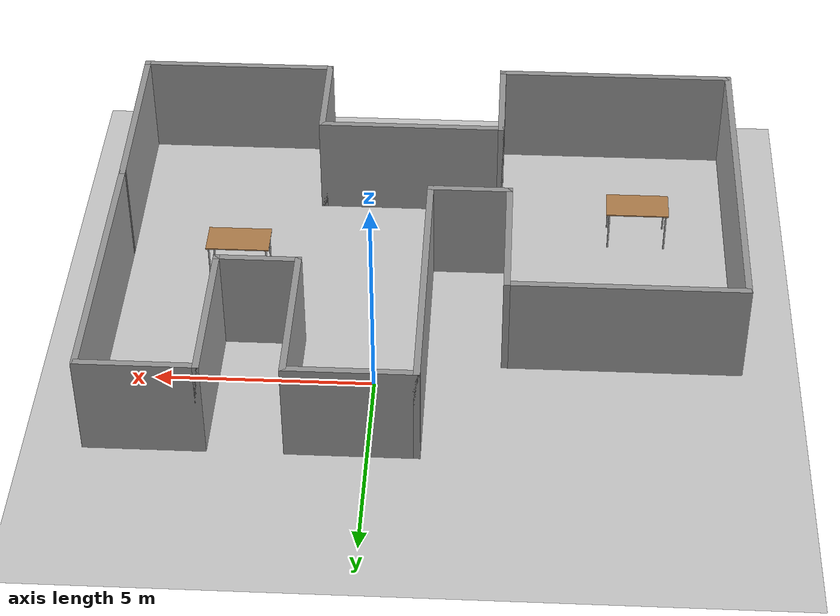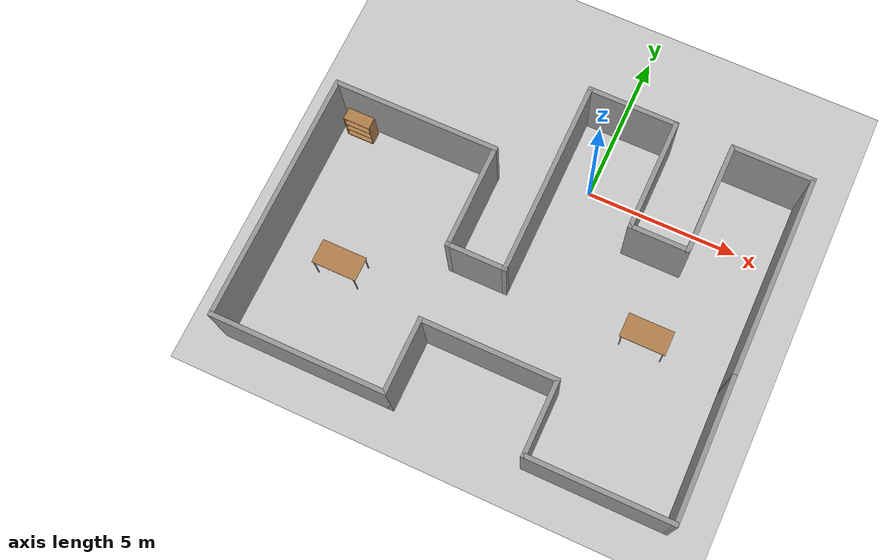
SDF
<sdf version="1.6">
 <world name="default">
  <light name="sun" type="directional">
   <pose>0 0 10 0 -0 0</pose>
   <diffuse>0.8 0.8 0.8 1</diffuse>
   <specular>0.2 0.2 0.2 1</specular>
   <attenuation>
    <range>1000</range>
    <constant>0.9</constant>
    <linear>0.01</linear>
    <quadratic>0.001</quadratic>
   </attenuation>
   <direction>-0.5 0.1 -0.9</direction>
  </light>
  <model name="ground_plane">
   <static>1</static>
   <link name="link">
    <collision name="collision">
     <geometry><plane><normal>0 0 1</normal><size>100 100</size></plane></geometry>
     <surface>
      <contact><collide_bitmask>65535</collide_bitmask></contact>
      <friction><ode><mu>100</mu><mu2>50</mu2></ode></friction>
     </surface>
    </collision>
    <visual name="visual">
     <cast_shadows>0</cast_shadows>
     <geometry><plane><normal>0 0 1</normal><size>100 100</size></plane></geometry>
     <material>
      <script><uri>file://media/materials/scripts/gazebo.material</uri><name>Gazebo/Grey</name></script>
     </material>
    </visual>
   </link>
  </model>
  <gravity>0 0 -9.8</gravity>
  <magnetic_field>6e-06 2.3e-05 -4.2e-05</magnetic_field>
  <atmosphere type="adiabatic"/>
  <physics name="default_physics" default="0" type="ode">
   <max_step_size>0.001</max_step_size>
   <real_time_factor>1</real_time_factor>
   <real_time_update_rate>1000</real_time_update_rate>
  </physics>
  <scene><ambient>0.4 0.4 0.4 1</ambient><background>0.7 0.7 0.7 1</background><shadows>1</shadows></scene>
  <spherical_coordinates>
   <surface_model>EARTH_WGS84</surface_model>
   <latitude_deg>0</latitude_deg>
   <longitude_deg>0</longitude_deg>
   <elevation>0</elevation>
   <heading_deg>0</heading_deg>
  </spherical_coordinates>
  <model name="home">
   <pose>-1.02459 -3.31041 0 0 -0 0</pose>
   <link name="Wall_22">
    <collision name="Wall_22_Collision">
     <geometry><box><size>6.5 0.15 2.5</size></box></geometry>
     <pose>0 0 1.25 0 -0 0</pose>
    </collision>
    <visual name="Wall_22_Visual">
     <pose>0 0 1.25 0 -0 0</pose>
     <geometry><box><size>6.5 0.15 2.5</size></box></geometry>
     <material>
      <script><uri>file://media/materials/scripts/gazebo.material</uri><name>Gazebo/Grey</name></script>
      <ambient>1 1 1 1</ambient>
     </material>
     <meta><layer>0</layer></meta>
    </visual>
    <pose>-0.075414 2.37541 0 0 0 -1.5708</pose>
   </link>
   <link name="Wall_23">
    <collision name="Wall_23_Collision">
     <geometry><box><size>2 0.15 2.5</size></box></geometry>
     <pose>0 0 1.25 0 -0 0</pose>
    </collision>
    <visual name="Wall_23_Visual">
     <pose>0 0 1.25 0 -0 0</pose>
     <geometry><box><size>2 0.15 2.5</size></box></geometry>
     <material>
      <script><uri>file://media/materials/scripts/gazebo.material</uri><name>Gazebo/Grey</name></script>
      <ambient>1 1 1 1</ambient>
     </material>
     <meta><layer>0</layer></meta>
    </visual>
    <pose>-1.00041 -0.799586 0 0 -0 3.14159</pose>
   </link>
   <link name="Wall_24">
    <collision name="Wall_24_Collision">
     <geometry><box><size>3.5 0.15 2.5</size></box></geometry>
     <pose>0 0 1.25 0 -0 0</pose>
    </collision>
    <visual name="Wall_24_Visual">
     <pose>0 0 1.25 0 -0 0</pose>
     <geometry><box><size>3.5 0.15 2.5</size></box></geometry>
     <material>
      <script><uri>file://media/materials/scripts/gazebo.material</uri><name>Gazebo/Grey</name></script>
      <ambient>1 1 1 1</ambient>
     </material>
     <meta><layer>0</layer></meta>
    </visual>
    <pose>-1.92541 0.875414 0 0 -0 1.5708</pose>
   </link>
   <link name="Wall_28">
    <collision name="Wall_28_Collision">
     <geometry><box><size>5.5 0.15 2.5</size></box></geometry>
     <pose>0 0 1.25 0 -0 0</pose>
    </collision>
    <visual name="Wall_28_Visual">
     <pose>0 0 1.25 0 -0 0</pose>
     <geometry><box><size>5.5 0.15 2.5</size></box></geometry>
     <material>
      <script><uri>file://media/materials/scripts/gazebo.material</uri><name>Gazebo/Grey</name></script>
      <ambient>1 1 1 1</ambient>
     </material>
     <meta><layer>0</layer></meta>
    </visual>
    <pose>-4.60041 2.55041 0 0 -0 3.14159</pose>
   </link>
   <link name="Wall_29">
    <collision name="Wall_29_Collision">
     <geometry><box><size>8.25 0.15 2.5</size></box></geometry>
     <pose>0 0 1.25 0 -0 0</pose>
    </collision>
    <visual name="Wall_29_Visual">
     <pose>0 0 1.25 0 -0 0</pose>
     <geometry><box><size>8.25 0.15 2.5</size></box></geometry>
     <material>
      <script><uri>file://media/materials/scripts/gazebo.material</uri><name>Gazebo/Grey</name></script>
      <ambient>1 1 1 1</ambient>
     </material>
     <meta><layer>0</layer></meta>
    </visual>
    <pose>-7.27541 -1.49959 0 0 0 -1.5708</pose>
   </link>
   <link name="Wall_3">
    <collision name="Wall_3_Collision">
     <geometry><box><size>3 0.15 2.5</size></box></geometry>
     <pose>0 0 1.25 0 -0 0</pose>
    </collision>
    <visual name="Wall_3_Visual">
     <pose>0 0 1.25 0 -0 0</pose>
     <geometry><box><size>3 0.15 2.5</size></box></geometry>
     <material>
      <script><uri>file://media/materials/scripts/gazebo.material</uri><name>Gazebo/Grey</name></script>
      <ambient>1 1 1 1</ambient>
     </material>
     <meta><layer>0</layer></meta>
    </visual>
    <pose>1.34959 5.55041 0 0 -0 0</pose>
   </link>
   <link name="Wall_32">
    <collision name="Wall_32_Collision">
     <geometry><box><size>5.75 0.15 2.5</size></box></geometry>
     <pose>0 0 1.25 0 -0 0</pose>
    </collision>
    <visual name="Wall_32_Visual">
     <pose>0 0 1.25 0 -0 0</pose>
     <geometry><box><size>5.75 0.15 2.5</size></box></geometry>
     <material>
      <script><uri>file://media/materials/scripts/gazebo.material</uri><name>Gazebo/Grey</name></script>
      <ambient>1 1 1 1</ambient>
     </material>
     <meta><layer>0</layer></meta>
    </visual>
    <pose>-4.47541 -5.54959 0 0 -0 0</pose>
   </link>
   <link name="Wall_33">
    <collision name="Wall_33_Collision">
     <geometry><box><size>2.5 0.15 2.5</size></box></geometry>
     <pose>0 0 1.25 0 -0 0</pose>
    </collision>
    <visual name="Wall_33_Visual">
     <pose>0 0 1.25 0 -0 0</pose>
     <geometry><box><size>2.5 0.15 2.5</size></box></geometry>
     <material>
      <script><uri>file://media/materials/scripts/gazebo.material</uri><name>Gazebo/Grey</name></script>
      <ambient>1 1 1 1</ambient>
     </material>
     <meta><layer>0</layer></meta>
    </visual>
    <pose>-1.67541 -4.37459 0 0 -0 1.5708</pose>
   </link>
   <link name="Wall_34">
    <collision name="Wall_34_Collision">
     <geometry><box><size>4.5 0.15 2.5</size></box></geometry>
     <pose>0 0 1.25 0 -0 0</pose>
    </collision>
    <visual name="Wall_34_Visual">
     <pose>0 0 1.25 0 -0 0</pose>
     <geometry><box><size>4.5 0.15 2.5</size></box></geometry>
     <material>
      <script><uri>file://media/materials/scripts/gazebo.material</uri><name>Gazebo/Grey</name></script>
      <ambient>1 1 1 1</ambient>
     </material>
     <meta><layer>0</layer></meta>
    </visual>
    <pose>0.499586 -3.19959 0 0 -0 0</pose>
   </link>
   <link name="Wall_35">
    <collision name="Wall_35_Collision">
     <geometry><box><size>2.5 0.15 2.5</size></box></geometry>
     <pose>0 0 1.25 0 -0 0</pose>
    </collision>
    <visual name="Wall_35_Visual">
     <pose>0 0 1.25 0 -0 0</pose>
     <geometry><box><size>2.5 0.15 2.5</size></box></geometry>
     <material>
      <script><uri>file://media/materials/scripts/gazebo.material</uri><name>Gazebo/Grey</name></script>
      <ambient>1 1 1 1</ambient>
     </material>
     <meta><layer>0</layer></meta>
    </visual>
    <pose>2.67459 -4.37459 0 0 0 -1.5708</pose>
   </link>
   <link name="Wall_36">
    <collision name="Wall_36_Collision">
     <geometry><box><size>4.75 0.15 2.5</size></box></geometry>
     <pose>0 0 1.25 0 -0 0</pose>
    </collision>
    <visual name="Wall_36_Visual">
     <pose>0 0 1.25 0 -0 0</pose>
     <geometry><box><size>4.75 0.15 2.5</size></box></geometry>
     <material>
      <script><uri>file://media/materials/scripts/gazebo.material</uri><name>Gazebo/Grey</name></script>
      <ambient>1 1 1 1</ambient>
     </material>
     <meta><layer>0</layer></meta>
    </visual>
    <pose>4.97459 -5.54959 0 0 -0 0</pose>
   </link>
   <link name="Wall_37">
    <collision name="Wall_37_Collision">
     <geometry><box><size>4.65028 0.15 2.5</size></box></geometry>
     <pose>0 0 1.25 0 -0 0</pose>
    </collision>
    <visual name="Wall_37_Visual">
     <pose>0 0 1.25 0 -0 0</pose>
     <geometry><box><size>4.65028 0.15 2.5</size></box></geometry>
     <material>
      <script><uri>file://media/materials/scripts/gazebo.material</uri><name>Gazebo/Grey</name></script>
      <ambient>1 1 1 1</ambient>
     </material>
     <meta><layer>0</layer></meta>
    </visual>
    <pose>7.24959 -3.29959 0 0 -0 1.58191</pose>
   </link>
   <link name="Wall_4">
    <collision name="Wall_4_Collision">
     <geometry><box><size>3.75 0.15 2.5</size></box></geometry>
     <pose>0 0 1.25 0 -0 0</pose>
    </collision>
    <visual name="Wall_4_Visual">
     <pose>0 0 1.25 0 -0 0</pose>
     <geometry><box><size>3.75 0.15 2.5</size></box></geometry>
     <material>
      <script><uri>file://media/materials/scripts/gazebo.material</uri><name>Gazebo/Grey</name></script>
      <ambient>1 1 1 1</ambient>
     </material>
     <meta><layer>0</layer></meta>
    </visual>
    <pose>2.77459 3.75041 0 0 0 -1.5708</pose>
   </link>
   <link name="Wall_5">
    <collision name="Wall_5_Collision">
     <geometry><box><size>2 0.15 2.5</size></box></geometry>
     <pose>0 0 1.25 0 -0 0</pose>
    </collision>
    <visual name="Wall_5_Visual">
     <pose>0 0 1.25 0 -0 0</pose>
     <geometry><box><size>2 0.15 2.5</size></box></geometry>
     <material>
      <script><uri>file://media/materials/scripts/gazebo.material</uri><name>Gazebo/Grey</name></script>
      <ambient>1 1 1 1</ambient>
     </material>
     <meta><layer>0</layer></meta>
    </visual>
    <pose>3.69959 1.95041 0 0 -0 0</pose>
   </link>
   <link name="Wall_6">
    <collision name="Wall_6_Collision">
     <geometry><box><size>3.75 0.15 2.5</size></box></geometry>
     <pose>0 0 1.25 0 -0 0</pose>
    </collision>
    <visual name="Wall_6_Visual">
     <pose>0 0 1.25 0 -0 0</pose>
     <geometry><box><size>3.75 0.15 2.5</size></box></geometry>
     <material>
      <script><uri>file://media/materials/scripts/gazebo.material</uri><name>Gazebo/Grey</name></script>
      <ambient>1 1 1 1</ambient>
     </material>
     <meta><layer>0</layer></meta>
    </visual>
    <pose>4.62459 3.75041 0 0 -0 1.5708</pose>
   </link>
   <link name="Wall_7">
    <collision name="Wall_7_Collision">
     <geometry><box><size>2.75 0.15 2.5</size></box></geometry>
     <pose>0 0 1.25 0 -0 0</pose>
    </collision>
    <visual name="Wall_7_Visual">
     <pose>0 0 1.25 0 -0 0</pose>
     <geometry><box><size>2.75 0.15 2.5</size></box></geometry>
     <material>
      <script><uri>file://media/materials/scripts/gazebo.material</uri><name>Gazebo/Grey</name></script>
      <ambient>1 1 1 1</ambient>
     </material>
     <meta><layer>0</layer></meta>
    </visual>
    <pose>5.92459 5.55041 0 0 -0 0</pose>
   </link>
   <link name="Wall_8">
    <collision name="Wall_8_Collision">
     <geometry><box><size>6.75 0.15 2.5</size></box></geometry>
     <pose>0 0 1.25 0 -0 0</pose>
    </collision>
    <visual name="Wall_8_Visual">
     <pose>0 0 1.25 0 -0 0</pose>
     <geometry><box><size>6.75 0.15 2.5</size></box></geometry>
     <material>
      <script><uri>file://media/materials/scripts/gazebo.material</uri><name>Gazebo/Grey</name></script>
      <ambient>1 1 1 1</ambient>
     </material>
     <meta><layer>0</layer></meta>
    </visual>
    <pose>7.22459 2.25041 0 0 0 -1.5708</pose>
   </link>
   <static>1</static>
  </model>
  <model name="bookshelf">
   <static>1</static>
   <link name="link">
    <inertial><mass>1</mass></inertial>
    <collision name="back">
     <pose>0 0.005 0.6 0 -0 0</pose>
     <geometry><box><size>0.9 0.01 1.2</size></box></geometry>
    </collision>
    <visual name="visual1">
     <pose>0 0.005 0.6 0 -0 0</pose>
     <geometry><box><size>0.9 0.01 1.2</size></box></geometry>
     <material>
      <script><uri>file://media/materials/scripts/gazebo.material</uri><name>Gazebo/Wood</name></script>
     </material>
    </visual>
    <collision name="left_side">
     <pose>0.45 -0.195 0.6 0 -0 0</pose>
     <geometry><box><size>0.02 0.4 1.2</size></box></geometry>
    </collision>
    <visual name="visual2">
     <pose>0.45 -0.195 0.6 0 -0 0</pose>
     <geometry><box><size>0.02 0.4 1.2</size></box></geometry>
     <material>
      <script><uri>file://media/materials/scripts/gazebo.material</uri><name>Gazebo/Wood</name></script>
     </material>
    </visual>
    <collision name="right_side">
     <pose>-0.45 -0.195 0.6 0 -0 0</pose>
     <geometry><box><size>0.02 0.4 1.2</size></box></geometry>
    </collision>
    <visual name="visual3">
     <pose>-0.45 -0.195 0.6 0 -0 0</pose>
     <geometry><box><size>0.02 0.4 1.2</size></box></geometry>
     <material>
      <script><uri>file://media/materials/scripts/gazebo.material</uri><name>Gazebo/Wood</name></script>
     </material>
    </visual>
    <collision name="bottom">
     <pose>0 -0.195 0.03 0 -0 0</pose>
     <geometry><box><size>0.88 0.4 0.06</size></box></geometry>
    </collision>
    <visual name="visual4">
     <pose>0 -0.195 0.03 0 -0 0</pose>
     <geometry><box><size>0.88 0.4 0.06</size></box></geometry>
     <material>
      <script><uri>file://media/materials/scripts/gazebo.material</uri><name>Gazebo/Wood</name></script>
     </material>
    </visual>
    <collision name="top">
     <pose>0 -0.195 1.19 0 -0 0</pose>
     <geometry><box><size>0.88 0.4 0.02</size></box></geometry>
    </collision>
    <visual name="visual5">
     <pose>0 -0.195 1.19 0 -0 0</pose>
     <geometry><box><size>0.88 0.4 0.02</size></box></geometry>
     <material>
      <script><uri>file://media/materials/scripts/gazebo.material</uri><name>Gazebo/Wood</name></script>
     </material>
    </visual>
    <collision name="low_shelf">
     <pose>0 -0.195 0.43 0 -0 0</pose>
     <geometry><box><size>0.88 0.4 0.02</size></box></geometry>
    </collision>
    <visual name="visual6">
     <pose>0 -0.195 0.43 0 -0 0</pose>
     <geometry><box><size>0.88 0.4 0.02</size></box></geometry>
     <material>
      <script><uri>file://media/materials/scripts/gazebo.material</uri><name>Gazebo/Wood</name></script>
     </material>
    </visual>
    <collision name="high_shelf">
     <pose>0 -0.195 0.8 0 -0 0</pose>
     <geometry><box><size>0.88 0.4 0.02</size></box></geometry>
    </collision>
    <visual name="visual7">
     <pose>0 -0.195 0.8 0 -0 0</pose>
     <geometry><box><size>0.88 0.4 0.02</size></box></geometry>
     <material>
      <script><uri>file://media/materials/scripts/gazebo.material</uri><name>Gazebo/Wood</name></script>
     </material>
    </visual>
   </link>
   <pose>-7.56996 -0.915355 0 0 -0 0</pose>
  </model>
  <model name="table">
   <static>1</static>
   <link name="link">
    <collision name="surface">
     <pose>0 0 1 0 -0 0</pose>
     <geometry><box><size>1.5 0.8 0.03</size></box></geometry>
     <surface><friction><ode><mu>0.6</mu><mu2>0.6</mu2></ode></friction></surface>
    </collision>
    <visual name="visual1">
     <pose>0 0 1 0 -0 0</pose>
     <geometry><box><size>1.5 0.8 0.03</size></box></geometry>
     <material>
      <script><uri>file://media/materials/scripts/gazebo.material</uri><name>Gazebo/Wood</name></script>
     </material>
    </visual>
    <collision name="front_left_leg">
     <pose>0.68 0.38 0.5 0 -0 0</pose>
     <geometry><cylinder><radius>0.02</radius><length>1</length></cylinder></geometry>
    </collision>
    <visual name="front_left_leg">
     <pose>0.68 0.38 0.5 0 -0 0</pose>
     <geometry><cylinder><radius>0.02</radius><length>1</length></cylinder></geometry>
     <material>
      <script><uri>file://media/materials/scripts/gazebo.material</uri><name>Gazebo/Grey</name></script>
     </material>
    </visual>
    <collision name="front_right_leg">
     <pose>0.68 -0.38 0.5 0 -0 0</pose>
     <geometry><cylinder><radius>0.02</radius><length>1</length></cylinder></geometry>
    </collision>
    <visual name="front_right_leg">
     <pose>0.68 -0.38 0.5 0 -0 0</pose>
     <geometry><cylinder><radius>0.02</radius><length>1</length></cylinder></geometry>
     <material>
      <script><uri>file://media/materials/scripts/gazebo.material</uri><name>Gazebo/Grey</name></script>
     </material>
    </visual>
    <collision name="back_right_leg">
     <pose>-0.68 -0.38 0.5 0 -0 0</pose>
     <geometry><cylinder><radius>0.02</radius><length>1</length></cylinder></geometry>
    </collision>
    <visual name="back_right_leg">
     <pose>-0.68 -0.38 0.5 0 -0 0</pose>
     <geometry><cylinder><radius>0.02</radius><length>1</length></cylinder></geometry>
     <material>
      <script><uri>file://media/materials/scripts/gazebo.material</uri><name>Gazebo/Grey</name></script>
     </material>
    </visual>
    <collision name="back_left_leg">
     <pose>-0.68 0.38 0.5 0 -0 0</pose>
     <geometry><cylinder><radius>0.02</radius><length>1</length></cylinder></geometry>
    </collision>
    <visual name="back_left_leg">
     <pose>-0.68 0.38 0.5 0 -0 0</pose>
     <geometry><cylinder><radius>0.02</radius><length>1</length></cylinder></geometry>
     <material>
      <script><uri>file://media/materials/scripts/gazebo.material</uri><name>Gazebo/Grey</name></script>
     </material>
    </visual>
   </link>
   <pose>3.45687 -3.81111 0 0 -0 0</pose>
  </model>
  <model name="table_0">
   <static>1</static>
   <link name="link">
    <collision name="surface">
     <pose>0 0 1 0 -0 0</pose>
     <geometry><box><size>1.5 0.8 0.03</size></box></geometry>
     <surface><friction><ode><mu>0.6</mu><mu2>0.6</mu2></ode></friction></surface>
    </collision>
    <visual name="visual1">
     <pose>0 0 1 0 -0 0</pose>
     <geometry><box><size>1.5 0.8 0.03</size></box></geometry>
     <material>
      <script><uri>file://media/materials/scripts/gazebo.material</uri><name>Gazebo/Wood</name></script>
     </material>
    </visual>
    <collision name="front_left_leg">
     <pose>0.68 0.38 0.5 0 -0 0</pose>
     <geometry><cylinder><radius>0.02</radius><length>1</length></cylinder></geometry>
    </collision>
    <visual name="front_left_leg">
     <pose>0.68 0.38 0.5 0 -0 0</pose>
     <geometry><cylinder><radius>0.02</radius><length>1</length></cylinder></geometry>
     <material>
      <script><uri>file://media/materials/scripts/gazebo.material</uri><name>Gazebo/Grey</name></script>
     </material>
    </visual>
    <collision name="front_right_leg">
     <pose>0.68 -0.38 0.5 0 -0 0</pose>
     <geometry><cylinder><radius>0.02</radius><length>1</length></cylinder></geometry>
    </collision>
    <visual name="front_right_leg">
     <pose>0.68 -0.38 0.5 0 -0 0</pose>
     <geometry><cylinder><radius>0.02</radius><length>1</length></cylinder></geometry>
     <material>
      <script><uri>file://media/materials/scripts/gazebo.material</uri><name>Gazebo/Grey</name></script>
     </material>
    </visual>
    <collision name="back_right_leg">
     <pose>-0.68 -0.38 0.5 0 -0 0</pose>
     <geometry><cylinder><radius>0.02</radius><length>1</length></cylinder></geometry>
    </collision>
    <visual name="back_right_leg">
     <pose>-0.68 -0.38 0.5 0 -0 0</pose>
     <geometry><cylinder><radius>0.02</radius><length>1</length></cylinder></geometry>
     <material>
      <script><uri>file://media/materials/scripts/gazebo.material</uri><name>Gazebo/Grey</name></script>
     </material>
    </visual>
    <collision name="back_left_leg">
     <pose>-0.68 0.38 0.5 0 -0 0</pose>
     <geometry><cylinder><radius>0.02</radius><length>1</length></cylinder></geometry>
    </collision>
    <visual name="back_left_leg">
     <pose>-0.68 0.38 0.5 0 -0 0</pose>
     <geometry><cylinder><radius>0.02</radius><length>1</length></cylinder></geometry>
     <material>
      <script><uri>file://media/materials/scripts/gazebo.material</uri><name>Gazebo/Grey</name></script>
     </material>
    </visual>
   </link>
   <pose>-6.05584 -5.53641 0 0 -0 0</pose>
  </model>
  <plugin filename="libcollision_map_creator.so" name="collision_map_creator"/>
 </world>
</sdf>
